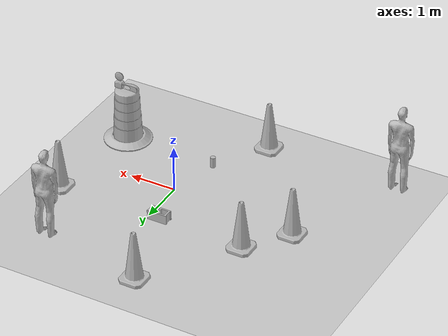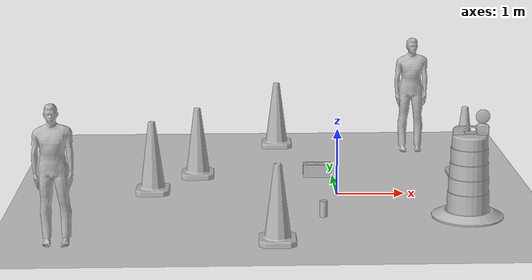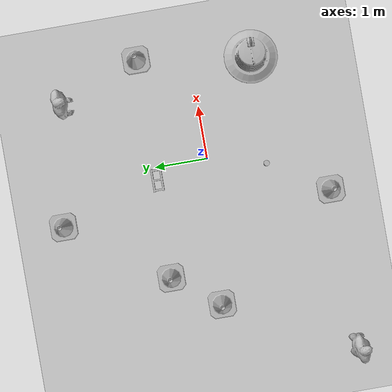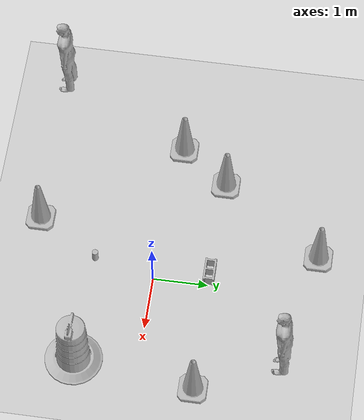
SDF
<sdf version="1.7">
 <world name="default">
  <light name="sun" type="directional">
   <pose>0 0 10 0 -0 0</pose>
   <diffuse>0.8 0.8 0.8 1</diffuse>
   <specular>0.2 0.2 0.2 1</specular>
   <attenuation>
    <range>1000</range>
    <constant>0.9</constant>
    <linear>0.01</linear>
    <quadratic>0.001</quadratic>
   </attenuation>
   <direction>-0.5 0.1 -0.9</direction>
   <spot><inner_angle>0</inner_angle><outer_angle>0</outer_angle><falloff>0</falloff></spot>
  </light>
  <model name="ground_plane">
   <static>1</static>
   <link name="link">
    <collision name="collision">
     <geometry><plane><normal>0 0 1</normal><size>100 100</size></plane></geometry>
     <surface>
      <contact><collide_bitmask>65535</collide_bitmask></contact>
      <friction><ode><mu>100</mu><mu2>50</mu2></ode></friction>
     </surface>
    </collision>
    <visual name="visual">
     <cast_shadows>0</cast_shadows>
     <geometry><plane><normal>0 0 1</normal><size>100 100</size></plane></geometry>
     <material>
      <script><uri>file://media/materials/scripts/gazebo.material</uri><name>Gazebo/Grey</name></script>
     </material>
    </visual>
   </link>
  </model>
  <gravity>0 0 -9.8</gravity>
  <magnetic_field>6e-06 2.3e-05 -4.2e-05</magnetic_field>
  <atmosphere type="adiabatic"/>
  <physics type="ode">
   <max_step_size>0.001</max_step_size>
   <real_time_factor>1</real_time_factor>
   <real_time_update_rate>1000</real_time_update_rate>
  </physics>
  <scene><ambient>0.4 0.4 0.4 1</ambient><background>0.7 0.7 0.7 1</background><shadows>1</shadows></scene>
  <audio><device>default</device></audio>
  <spherical_coordinates>
   <surface_model>EARTH_WGS84</surface_model>
   <latitude_deg>0</latitude_deg>
   <longitude_deg>0</longitude_deg>
   <elevation>0</elevation>
   <heading_deg>0</heading_deg>
  </spherical_coordinates>
  <model name="Construction Cone">
   <link name="link">
    <collision name="collision">
     <geometry>
      <mesh><scale>10 10 10</scale><uri>model://construction_cone/meshes/construction_cone.dae</uri></mesh>
     </geometry>
    </collision>
    <visual name="visual">
     <geometry>
      <mesh><scale>10 10 10</scale><uri>model://construction_cone/meshes/construction_cone.dae</uri></mesh>
     </geometry>
    </visual>
    <inertial>
     <inertia><ixx>1</ixx><ixy>0</ixy><ixz>0</ixz><iyy>1</iyy><iyz>0</iyz><izz>1</izz></inertia>
     <mass>1</mass>
    </inertial>
   </link>
   <pose>2.06611 1.00933 -0 0 -1e-06 0</pose>
  </model>
  <model name="Construction Cone_0">
   <link name="link">
    <collision name="collision">
     <geometry>
      <mesh><scale>10 10 10</scale><uri>model://construction_cone/meshes/construction_cone.dae</uri></mesh>
     </geometry>
    </collision>
    <visual name="visual">
     <geometry>
      <mesh><scale>10 10 10</scale><uri>model://construction_cone/meshes/construction_cone.dae</uri></mesh>
     </geometry>
    </visual>
    <inertial>
     <inertia><ixx>1</ixx><ixy>0</ixy><ixz>0</ixz><iyy>1</iyy><iyz>0</iyz><izz>1</izz></inertia>
     <mass>1</mass>
    </inertial>
   </link>
   <pose>-2.09749 1.05384 -0 -0 -0 -0</pose>
  </model>
  <model name="Construction Barrel">
   <link name="link">
    <inertial>
     <pose>0 0 0.4 0 -0 0</pose>
     <mass>500</mass>
     <inertia><ixx>51.2096</ixx><iyy>51.2096</iyy><izz>25</izz><ixy>0</ixy><ixz>0</ixz><iyz>0</iyz></inertia>
    </inertial>
    <collision name="collision">
     <geometry><mesh><uri>model://construction_barrel/meshes/construction_barrel.dae</uri></mesh></geometry>
    </collision>
    <visual name="visual">
     <geometry><mesh><uri>model://construction_barrel/meshes/construction_barrel.dae</uri></mesh></geometry>
    </visual>
   </link>
   <pose>1.76783 -1.13641 0 0 0 -1.5e-05</pose>
  </model>
  <model name="cinder_block">
   <link name="link">
    <inertial>
     <pose>0 0 0.1016 0 -0 0</pose>
     <mass>5</mass>
     <inertia>
      <ixx>0.028705</ixx>
      <ixy>0</ixy>
      <iyy>0.073708</iyy>
      <ixz>0</ixz>
      <iyz>0</iyz>
      <izz>0.06908</izz>
     </inertia>
    </inertial>
    <visual name="visual">
     <geometry><mesh><uri>model://cinder_block/meshes/cinder_block.dae</uri></mesh></geometry>
    </visual>
    <collision name="left">
     <pose>0 -0.08465 0.1016 0 -0 0</pose>
     <geometry><box><size>0.43495 0.0339 0.2032</size></box></geometry>
     <surface>
      <contact><ode><max_vel>0.1</max_vel><min_depth>0.001</min_depth></ode></contact>
      <friction><ode><mu>1</mu><mu2>1</mu2></ode></friction>
     </surface>
    </collision>
    <collision name="right">
     <pose>0 0.08465 0.1016 0 -0 0</pose>
     <geometry><box><size>0.43495 0.0339 0.2032</size></box></geometry>
     <surface>
      <contact><ode><max_vel>0.1</max_vel><min_depth>0.001</min_depth></ode></contact>
      <friction><ode><mu>1</mu><mu2>1</mu2></ode></friction>
     </surface>
    </collision>
    <collision name="front">
     <pose>0.18625 0 0.1016 0 -0 0</pose>
     <geometry><box><size>0.0339 0.1354 0.203</size></box></geometry>
     <surface>
      <contact><ode><max_vel>0.1</max_vel><min_depth>0.001</min_depth></ode></contact>
      <friction><ode><mu>1</mu><mu2>1</mu2></ode></friction>
     </surface>
    </collision>
    <collision name="middle">
     <pose>0 0 0.1016 0 -0 0</pose>
     <geometry><box><size>0.0339 0.1354 0.203</size></box></geometry>
     <surface>
      <contact><ode><max_vel>0.1</max_vel><min_depth>0.001</min_depth></ode></contact>
      <friction><ode><mu>1</mu><mu2>1</mu2></ode></friction>
     </surface>
    </collision>
    <collision name="back">
     <pose>-0.18625 0 0.1016 0 -0 0</pose>
     <geometry><box><size>0.0339 0.1354 0.203</size></box></geometry>
     <surface>
      <contact><ode><max_vel>0.1</max_vel><min_depth>0.001</min_depth></ode></contact>
      <friction><ode><mu>1</mu><mu2>1</mu2></ode></friction>
     </surface>
    </collision>
   </link>
   <pose>-0.233269 0.997947 -6e-06 -1e-06 2.8e-05 -0</pose>
  </model>
  <model name="beer">
   <link name="link">
    <pose>0 0 0.115 0 -0 0</pose>
    <inertial>
     <mass>0.39</mass>
     <inertia><ixx>0.00058</ixx><ixy>0</ixy><ixz>0</ixz><iyy>0.00058</iyy><iyz>0</iyz><izz>0.00019</izz></inertia>
    </inertial>
    <collision name="collision">
     <geometry><cylinder><radius>0.055</radius><length>0.23</length></cylinder></geometry>
    </collision>
    <visual name="visual">
     <geometry><cylinder><radius>0.055</radius><length>0.23</length></cylinder></geometry>
     <material>
      <script>
       <uri>model://beer/materials/scripts</uri>
       <uri>model://beer/materials/textures</uri>
       <name>Beer/Diffuse</name>
      </script>
     </material>
    </visual>
   </link>
   <pose>-0.270827 -1.08249 -7e-06 -0 -0 -6e-06</pose>
  </model>
  <model name="person_standing">
   <link name="link">
    <inertial>
     <pose>0 -0.1 0.95 0 -0 0</pose>
     <mass>80</mass>
     <inertia><ixx>24.88</ixx><ixy>0</ixy><ixz>0</ixz><iyy>25.73</iyy><iyz>0</iyz><izz>2.48</izz></inertia>
    </inertial>
    <collision name="bottom">
     <pose>0 -0.1 0.01 0 -0 0</pose>
     <geometry><box><size>0.5 0.35 0.02</size></box></geometry>
    </collision>
    <collision name="person">
     <pose>0 0 0.02 0.04 -0 0</pose>
     <geometry><mesh><uri>model://person_standing/meshes/standing.dae</uri></mesh></geometry>
    </collision>
    <visual name="visual">
     <pose>0 0 0.02 0.04 -0 0</pose>
     <geometry><mesh><uri>model://person_standing/meshes/standing.dae</uri></mesh></geometry>
    </visual>
   </link>
   <pose>1.41583 2.56821 0 -2e-06 -1e-06 -0.000402</pose>
  </model>
  <model name="Construction Cone_1">
   <link name="link">
    <collision name="collision">
     <geometry>
      <mesh><scale>10 10 10</scale><uri>model://construction_cone/meshes/construction_cone.dae</uri></mesh>
     </geometry>
    </collision>
    <visual name="visual">
     <geometry>
      <mesh><scale>10 10 10</scale><uri>model://construction_cone/meshes/construction_cone.dae</uri></mesh>
     </geometry>
    </visual>
    <inertial>
     <inertia><ixx>1</ixx><ixy>0</ixy><ixz>0</ixz><iyy>1</iyy><iyz>0</iyz><izz>1</izz></inertia>
     <mass>1</mass>
    </inertial>
   </link>
   <pose>-2.7525 0.193641 -8e-06 0 1e-06 0</pose>
  </model>
  <model name="Construction Cone_2">
   <link name="link">
    <collision name="collision">
     <geometry>
      <mesh><scale>10 10 10</scale><uri>model://construction_cone/meshes/construction_cone.dae</uri></mesh>
     </geometry>
    </collision>
    <visual name="visual">
     <geometry>
      <mesh><scale>10 10 10</scale><uri>model://construction_cone/meshes/construction_cone.dae</uri></mesh>
     </geometry>
    </visual>
    <inertial>
     <inertia><ixx>1</ixx><ixy>0</ixy><ixz>0</ixz><iyy>1</iyy><iyz>0</iyz><izz>1</izz></inertia>
     <mass>1</mass>
    </inertial>
   </link>
   <pose>-0.809152 2.89448 -6e-06 -4e-06 0 0</pose>
  </model>
  <model name="Construction Cone_3">
   <link name="link">
    <collision name="collision">
     <geometry>
      <mesh><scale>10 10 10</scale><uri>model://construction_cone/meshes/construction_cone.dae</uri></mesh>
     </geometry>
    </collision>
    <visual name="visual">
     <geometry>
      <mesh><scale>10 10 10</scale><uri>model://construction_cone/meshes/construction_cone.dae</uri></mesh>
     </geometry>
    </visual>
    <inertial>
     <inertia><ixx>1</ixx><ixy>0</ixy><ixz>0</ixz><iyy>1</iyy><iyz>0</iyz><izz>1</izz></inertia>
     <mass>1</mass>
    </inertial>
   </link>
   <pose>-0.958773 -2.19842 -0 0 -0 0</pose>
  </model>
  <model name="person_standing_0">
   <link name="link">
    <inertial>
     <pose>0 -0.1 0.95 0 -0 0</pose>
     <mass>80</mass>
     <inertia><ixx>24.88</ixx><ixy>0</ixy><ixz>0</ixz><iyy>25.73</iyy><iyz>0</iyz><izz>2.48</izz></inertia>
    </inertial>
    <collision name="bottom">
     <pose>0 -0.1 0.01 0 -0 0</pose>
     <geometry><box><size>0.5 0.35 0.02</size></box></geometry>
    </collision>
    <collision name="person">
     <pose>0 0 0.02 0.04 -0 0</pose>
     <geometry><mesh><uri>model://person_standing/meshes/standing.dae</uri></mesh></geometry>
    </collision>
    <visual name="visual">
     <pose>0 0 0.02 0.04 -0 0</pose>
     <geometry><mesh><uri>model://person_standing/meshes/standing.dae</uri></mesh></geometry>
    </visual>
   </link>
   <pose>-3.90152 -2.09469 -0 -1e-06 1e-06 -0.000133</pose>
  </model>
 </world>
</sdf>
